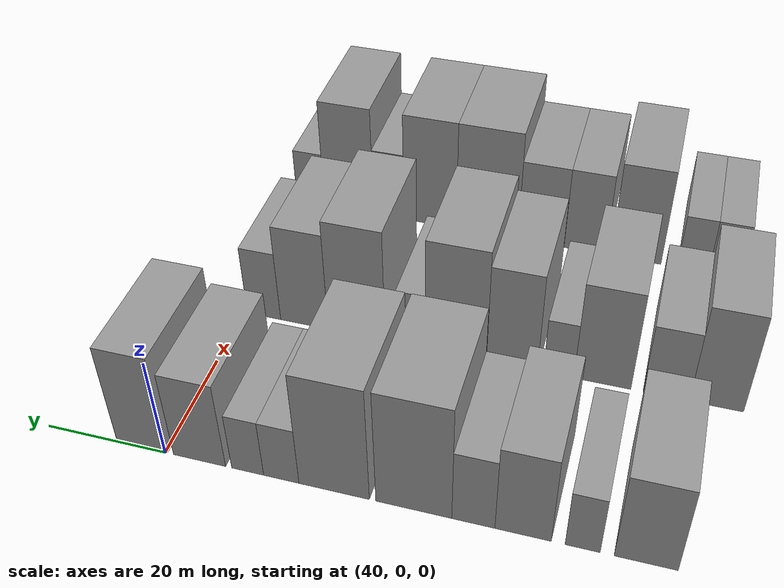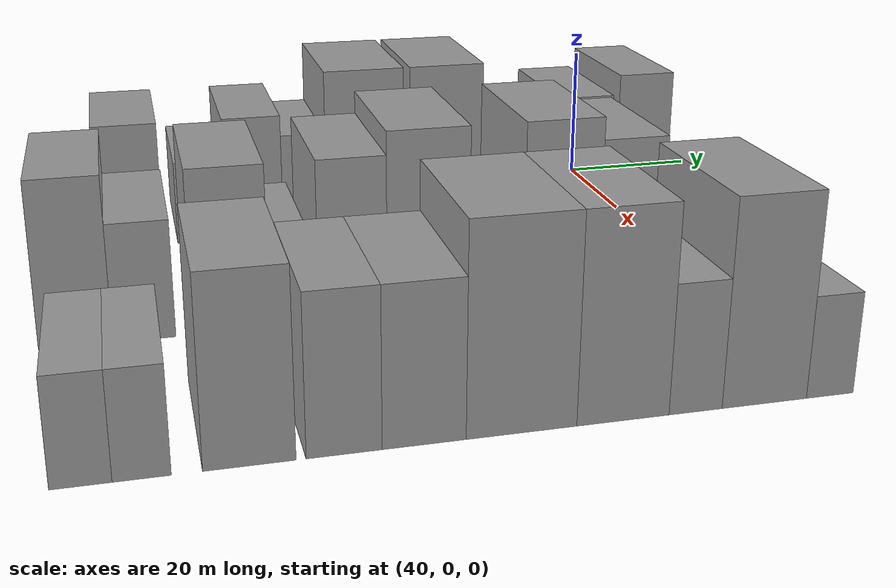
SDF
<sdf version="1.6">
 <world name="default">
  <model name="building_26">
   <static>1</static>
   <pose>50.0000 -73.7339 0 0.000000 0.000000 0.000000</pose>
   <link name="link">
    <pose>0 0 9.00 0 0 0</pose>
    <collision name="collision"><geometry><box><size>20.0000 8.9888 18.0000</size></box></geometry></collision>
    <visual name="visual">
     <cast_shadows>0</cast_shadows>
     <geometry><box><size>20.0000 8.9888 18.0000</size></box></geometry>
     <material>
      <script>
       <uri>model://grey_wall/materials/scripts</uri>
       <uri>model://grey_wall/materials/textures</uri>
       <name>vrc/grey_wall</name>
      </script>
     </material>
    </visual>
   </link>
  </model>
  <model name="building_27">
   <static>1</static>
   <pose>50.0000 -64.7259 0 0.000000 0.000000 0.000000</pose>
   <link name="link">
    <pose>0 0 6.00 0 0 0</pose>
    <collision name="collision"><geometry><box><size>20.0000 5.0272 12.0000</size></box></geometry></collision>
    <visual name="visual">
     <cast_shadows>0</cast_shadows>
     <geometry><box><size>20.0000 5.0272 12.0000</size></box></geometry>
     <material>
      <script>
       <uri>model://grey_wall/materials/scripts</uri>
       <uri>model://grey_wall/materials/textures</uri>
       <name>vrc/grey_wall</name>
      </script>
     </material>
    </visual>
   </link>
  </model>
  <model name="building_28">
   <static>1</static>
   <pose>50.0000 -56.0772 0 0.000000 0.000000 0.000000</pose>
   <link name="link">
    <pose>0 0 9.00 0 0 0</pose>
    <collision name="collision"><geometry><box><size>20.0000 8.2703 18.0000</size></box></geometry></collision>
    <visual name="visual">
     <cast_shadows>0</cast_shadows>
     <geometry><box><size>20.0000 8.2703 18.0000</size></box></geometry>
     <material>
      <script>
       <uri>model://grey_wall/materials/scripts</uri>
       <uri>model://grey_wall/materials/textures</uri>
       <name>vrc/grey_wall</name>
      </script>
     </material>
    </visual>
   </link>
  </model>
  <model name="building_29">
   <static>1</static>
   <pose>50.0000 -48.7248 0 0.000000 0.000000 0.000000</pose>
   <link name="link">
    <pose>0 0 7.50 0 0 0</pose>
    <collision name="collision"><geometry><box><size>20.0000 6.4346 15.0000</size></box></geometry></collision>
    <visual name="visual">
     <cast_shadows>0</cast_shadows>
     <geometry><box><size>20.0000 6.4346 15.0000</size></box></geometry>
     <material>
      <script>
       <uri>model://grey_wall/materials/scripts</uri>
       <uri>model://grey_wall/materials/textures</uri>
       <name>vrc/grey_wall</name>
      </script>
     </material>
    </visual>
   </link>
  </model>
  <model name="building_30">
   <static>1</static>
   <pose>50.0000 -39.7111 0 0.000000 0.000000 0.000000</pose>
   <link name="link">
    <pose>0 0 12.00 0 0 0</pose>
    <collision name="collision"><geometry><box><size>20.0000 11.5926 24.0000</size></box></geometry></collision>
    <visual name="visual">
     <cast_shadows>0</cast_shadows>
     <geometry><box><size>20.0000 11.5926 24.0000</size></box></geometry>
     <material>
      <script>
       <uri>model://grey_wall/materials/scripts</uri>
       <uri>model://grey_wall/materials/textures</uri>
       <name>vrc/grey_wall</name>
      </script>
     </material>
    </visual>
   </link>
  </model>
  <model name="building_31">
   <static>1</static>
   <pose>50.0000 -27.3773 0 0.000000 0.000000 0.000000</pose>
   <link name="link">
    <pose>0 0 12.00 0 0 0</pose>
    <collision name="collision"><geometry><box><size>20.0000 11.0751 24.0000</size></box></geometry></collision>
    <visual name="visual">
     <cast_shadows>0</cast_shadows>
     <geometry><box><size>20.0000 11.0751 24.0000</size></box></geometry>
     <material>
      <script>
       <uri>model://grey_wall/materials/scripts</uri>
       <uri>model://grey_wall/materials/textures</uri>
       <name>vrc/grey_wall</name>
      </script>
     </material>
    </visual>
   </link>
  </model>
  <model name="building_32">
   <static>1</static>
   <pose>50.0000 -19.0092 0 0.000000 0.000000 0.000000</pose>
   <link name="link">
    <pose>0 0 6.00 0 0 0</pose>
    <collision name="collision"><geometry><box><size>20.0000 5.6609 12.0000</size></box></geometry></collision>
    <visual name="visual">
     <cast_shadows>0</cast_shadows>
     <geometry><box><size>20.0000 5.6609 12.0000</size></box></geometry>
     <material>
      <script>
       <uri>model://grey_wall/materials/scripts</uri>
       <uri>model://grey_wall/materials/textures</uri>
       <name>vrc/grey_wall</name>
      </script>
     </material>
    </visual>
   </link>
  </model>
  <model name="building_33">
   <static>1</static>
   <pose>50.0000 -13.5868 0 0.000000 0.000000 0.000000</pose>
   <link name="link">
    <pose>0 0 6.00 0 0 0</pose>
    <collision name="collision"><geometry><box><size>20.0000 5.1841 12.0000</size></box></geometry></collision>
    <visual name="visual">
     <cast_shadows>0</cast_shadows>
     <geometry><box><size>20.0000 5.1841 12.0000</size></box></geometry>
     <material>
      <script>
       <uri>model://grey_wall/materials/scripts</uri>
       <uri>model://grey_wall/materials/textures</uri>
       <name>vrc/grey_wall</name>
      </script>
     </material>
    </visual>
   </link>
  </model>
  <model name="building_34">
   <static>1</static>
   <pose>50.0000 -5.6855 0 0.000000 0.000000 0.000000</pose>
   <link name="link">
    <pose>0 0 9.00 0 0 0</pose>
    <collision name="collision"><geometry><box><size>20.0000 8.6185 18.0000</size></box></geometry></collision>
    <visual name="visual">
     <cast_shadows>0</cast_shadows>
     <geometry><box><size>20.0000 8.6185 18.0000</size></box></geometry>
     <material>
      <script>
       <uri>model://grey_wall/materials/scripts</uri>
       <uri>model://grey_wall/materials/textures</uri>
       <name>vrc/grey_wall</name>
      </script>
     </material>
    </visual>
   </link>
  </model>
  <model name="building_35">
   <static>1</static>
   <pose>50.0000 3.8920 0 0.000000 0.000000 0.000000</pose>
   <link name="link">
    <pose>0 0 10.50 0 0 0</pose>
    <collision name="collision"><geometry><box><size>20.0000 8.5365 21.0000</size></box></geometry></collision>
    <visual name="visual">
     <cast_shadows>0</cast_shadows>
     <geometry><box><size>20.0000 8.5365 21.0000</size></box></geometry>
     <material>
      <script>
       <uri>model://grey_wall/materials/scripts</uri>
       <uri>model://grey_wall/materials/textures</uri>
       <name>vrc/grey_wall</name>
      </script>
     </material>
    </visual>
   </link>
  </model>
  <model name="building_107">
   <static>1</static>
   <pose>82.0000 -81.1191 0 0.000000 0.000000 0.000000</pose>
   <link name="link">
    <pose>0 0 10.50 0 0 0</pose>
    <collision name="collision"><geometry><box><size>20.0000 8.5541 21.0000</size></box></geometry></collision>
    <visual name="visual">
     <cast_shadows>0</cast_shadows>
     <geometry><box><size>20.0000 8.5541 21.0000</size></box></geometry>
     <material>
      <script>
       <uri>model://grey_wall/materials/scripts</uri>
       <uri>model://grey_wall/materials/textures</uri>
       <name>vrc/grey_wall</name>
      </script>
     </material>
    </visual>
   </link>
  </model>
  <model name="building_108">
   <static>1</static>
   <pose>82.0000 -73.1270 0 0.000000 0.000000 0.000000</pose>
   <link name="link">
    <pose>0 0 7.50 0 0 0</pose>
    <collision name="collision"><geometry><box><size>20.0000 7.4301 15.0000</size></box></geometry></collision>
    <visual name="visual">
     <cast_shadows>0</cast_shadows>
     <geometry><box><size>20.0000 7.4301 15.0000</size></box></geometry>
     <material>
      <script>
       <uri>model://grey_wall/materials/scripts</uri>
       <uri>model://grey_wall/materials/textures</uri>
       <name>vrc/grey_wall</name>
      </script>
     </material>
    </visual>
   </link>
  </model>
  <model name="building_109">
   <static>1</static>
   <pose>82.0000 -62.7336 0 0.000000 0.000000 0.000000</pose>
   <link name="link">
    <pose>0 0 10.50 0 0 0</pose>
    <collision name="collision"><geometry><box><size>20.0000 9.3566 21.0000</size></box></geometry></collision>
    <visual name="visual">
     <cast_shadows>0</cast_shadows>
     <geometry><box><size>20.0000 9.3566 21.0000</size></box></geometry>
     <material>
      <script>
       <uri>model://grey_wall/materials/scripts</uri>
       <uri>model://grey_wall/materials/textures</uri>
       <name>vrc/grey_wall</name>
      </script>
     </material>
    </visual>
   </link>
  </model>
  <model name="building_110">
   <static>1</static>
   <pose>82.0000 -55.5170 0 0.000000 0.000000 0.000000</pose>
   <link name="link">
    <pose>0 0 6.00 0 0 0</pose>
    <collision name="collision"><geometry><box><size>20.0000 5.0767 12.0000</size></box></geometry></collision>
    <visual name="visual">
     <cast_shadows>0</cast_shadows>
     <geometry><box><size>20.0000 5.0767 12.0000</size></box></geometry>
     <material>
      <script>
       <uri>model://grey_wall/materials/scripts</uri>
       <uri>model://grey_wall/materials/textures</uri>
       <name>vrc/grey_wall</name>
      </script>
     </material>
    </visual>
   </link>
  </model>
  <model name="building_111">
   <static>1</static>
   <pose>82.0000 -47.6541 0 0.000000 0.000000 0.000000</pose>
   <link name="link">
    <pose>0 0 10.50 0 0 0</pose>
    <collision name="collision"><geometry><box><size>20.0000 8.6492 21.0000</size></box></geometry></collision>
    <visual name="visual">
     <cast_shadows>0</cast_shadows>
     <geometry><box><size>20.0000 8.6492 21.0000</size></box></geometry>
     <material>
      <script>
       <uri>model://grey_wall/materials/scripts</uri>
       <uri>model://grey_wall/materials/textures</uri>
       <name>vrc/grey_wall</name>
      </script>
     </material>
    </visual>
   </link>
  </model>
  <model name="building_112">
   <static>1</static>
   <pose>82.0000 -38.0408 0 0.000000 0.000000 0.000000</pose>
   <link name="link">
    <pose>0 0 12.00 0 0 0</pose>
    <collision name="collision"><geometry><box><size>20.0000 10.5772 24.0000</size></box></geometry></collision>
    <visual name="visual">
     <cast_shadows>0</cast_shadows>
     <geometry><box><size>20.0000 10.5772 24.0000</size></box></geometry>
     <material>
      <script>
       <uri>model://grey_wall/materials/scripts</uri>
       <uri>model://grey_wall/materials/textures</uri>
       <name>vrc/grey_wall</name>
      </script>
     </material>
    </visual>
   </link>
  </model>
  <model name="building_113">
   <static>1</static>
   <pose>82.0000 -30.1926 0 0.000000 0.000000 0.000000</pose>
   <link name="link">
    <pose>0 0 6.00 0 0 0</pose>
    <collision name="collision"><geometry><box><size>20.0000 5.1192 12.0000</size></box></geometry></collision>
    <visual name="visual">
     <cast_shadows>0</cast_shadows>
     <geometry><box><size>20.0000 5.1192 12.0000</size></box></geometry>
     <material>
      <script>
       <uri>model://grey_wall/materials/scripts</uri>
       <uri>model://grey_wall/materials/textures</uri>
       <name>vrc/grey_wall</name>
      </script>
     </material>
    </visual>
   </link>
  </model>
  <model name="building_114">
   <static>1</static>
   <pose>82.0000 -20.5307 0 0.000000 0.000000 0.000000</pose>
   <link name="link">
    <pose>0 0 12.00 0 0 0</pose>
    <collision name="collision"><geometry><box><size>20.0000 10.2048 24.0000</size></box></geometry></collision>
    <visual name="visual">
     <cast_shadows>0</cast_shadows>
     <geometry><box><size>20.0000 10.2048 24.0000</size></box></geometry>
     <material>
      <script>
       <uri>model://grey_wall/materials/scripts</uri>
       <uri>model://grey_wall/materials/textures</uri>
       <name>vrc/grey_wall</name>
      </script>
     </material>
    </visual>
   </link>
  </model>
  <model name="building_115">
   <static>1</static>
   <pose>82.0000 -11.0730 0 0.000000 0.000000 0.000000</pose>
   <link name="link">
    <pose>0 0 10.50 0 0 0</pose>
    <collision name="collision"><geometry><box><size>20.0000 8.7106 21.0000</size></box></geometry></collision>
    <visual name="visual">
     <cast_shadows>0</cast_shadows>
     <geometry><box><size>20.0000 8.7106 21.0000</size></box></geometry>
     <material>
      <script>
       <uri>model://grey_wall/materials/scripts</uri>
       <uri>model://grey_wall/materials/textures</uri>
       <name>vrc/grey_wall</name>
      </script>
     </material>
    </visual>
   </link>
  </model>
  <model name="building_116">
   <static>1</static>
   <pose>82.0000 -3.6223 0 0.000000 0.000000 0.000000</pose>
   <link name="link">
    <pose>0 0 7.50 0 0 0</pose>
    <collision name="collision"><geometry><box><size>20.0000 6.1908 15.0000</size></box></geometry></collision>
    <visual name="visual">
     <cast_shadows>0</cast_shadows>
     <geometry><box><size>20.0000 6.1908 15.0000</size></box></geometry>
     <material>
      <script>
       <uri>model://grey_wall/materials/scripts</uri>
       <uri>model://grey_wall/materials/textures</uri>
       <name>vrc/grey_wall</name>
      </script>
     </material>
    </visual>
   </link>
  </model>
  <model name="building_185">
   <static>1</static>
   <pose>114.0000 -80.3225 0 0.000000 0.000000 0.000000</pose>
   <link name="link">
    <pose>0 0 6.00 0 0 0</pose>
    <collision name="collision"><geometry><box><size>20.0000 5.8989 12.0000</size></box></geometry></collision>
    <visual name="visual">
     <cast_shadows>0</cast_shadows>
     <geometry><box><size>20.0000 5.8989 12.0000</size></box></geometry>
     <material>
      <script>
       <uri>model://grey_wall/materials/scripts</uri>
       <uri>model://grey_wall/materials/textures</uri>
       <name>vrc/grey_wall</name>
      </script>
     </material>
    </visual>
   </link>
  </model>
  <model name="building_186">
   <static>1</static>
   <pose>114.0000 -74.5628 0 0.000000 0.000000 0.000000</pose>
   <link name="link">
    <pose>0 0 6.00 0 0 0</pose>
    <collision name="collision"><geometry><box><size>20.0000 5.6205 12.0000</size></box></geometry></collision>
    <visual name="visual">
     <cast_shadows>0</cast_shadows>
     <geometry><box><size>20.0000 5.6205 12.0000</size></box></geometry>
     <material>
      <script>
       <uri>model://grey_wall/materials/scripts</uri>
       <uri>model://grey_wall/materials/textures</uri>
       <name>vrc/grey_wall</name>
      </script>
     </material>
    </visual>
   </link>
  </model>
  <model name="building_187">
   <static>1</static>
   <pose>114.0000 -64.1477 0 0.000000 0.000000 0.000000</pose>
   <link name="link">
    <pose>0 0 10.50 0 0 0</pose>
    <collision name="collision"><geometry><box><size>20.0000 9.2096 21.0000</size></box></geometry></collision>
    <visual name="visual">
     <cast_shadows>0</cast_shadows>
     <geometry><box><size>20.0000 9.2096 21.0000</size></box></geometry>
     <material>
      <script>
       <uri>model://grey_wall/materials/scripts</uri>
       <uri>model://grey_wall/materials/textures</uri>
       <name>vrc/grey_wall</name>
      </script>
     </material>
    </visual>
   </link>
  </model>
  <model name="building_188">
   <static>1</static>
   <pose>114.0000 -54.6739 0 0.000000 0.000000 0.000000</pose>
   <link name="link">
    <pose>0 0 9.00 0 0 0</pose>
    <collision name="collision"><geometry><box><size>20.0000 7.7380 18.0000</size></box></geometry></collision>
    <visual name="visual">
     <cast_shadows>0</cast_shadows>
     <geometry><box><size>20.0000 7.7380 18.0000</size></box></geometry>
     <material>
      <script>
       <uri>model://grey_wall/materials/scripts</uri>
       <uri>model://grey_wall/materials/textures</uri>
       <name>vrc/grey_wall</name>
      </script>
     </material>
    </visual>
   </link>
  </model>
  <model name="building_189">
   <static>1</static>
   <pose>114.0000 -46.4164 0 0.000000 0.000000 0.000000</pose>
   <link name="link">
    <pose>0 0 9.00 0 0 0</pose>
    <collision name="collision"><geometry><box><size>20.0000 8.7769 18.0000</size></box></geometry></collision>
    <visual name="visual">
     <cast_shadows>0</cast_shadows>
     <geometry><box><size>20.0000 8.7769 18.0000</size></box></geometry>
     <material>
      <script>
       <uri>model://grey_wall/materials/scripts</uri>
       <uri>model://grey_wall/materials/textures</uri>
       <name>vrc/grey_wall</name>
      </script>
     </material>
    </visual>
   </link>
  </model>
  <model name="building_190">
   <static>1</static>
   <pose>114.0000 -36.0393 0 0.000000 0.000000 0.000000</pose>
   <link name="link">
    <pose>0 0 12.00 0 0 0</pose>
    <collision name="collision"><geometry><box><size>20.0000 11.9773 24.0000</size></box></geometry></collision>
    <visual name="visual">
     <cast_shadows>0</cast_shadows>
     <geometry><box><size>20.0000 11.9773 24.0000</size></box></geometry>
     <material>
      <script>
       <uri>model://grey_wall/materials/scripts</uri>
       <uri>model://grey_wall/materials/textures</uri>
       <name>vrc/grey_wall</name>
      </script>
     </material>
    </visual>
   </link>
  </model>
  <model name="building_191">
   <static>1</static>
   <pose>114.0000 -24.8741 0 0.000000 0.000000 0.000000</pose>
   <link name="link">
    <pose>0 0 12.00 0 0 0</pose>
    <collision name="collision"><geometry><box><size>20.0000 10.3530 24.0000</size></box></geometry></collision>
    <visual name="visual">
     <cast_shadows>0</cast_shadows>
     <geometry><box><size>20.0000 10.3530 24.0000</size></box></geometry>
     <material>
      <script>
       <uri>model://grey_wall/materials/scripts</uri>
       <uri>model://grey_wall/materials/textures</uri>
       <name>vrc/grey_wall</name>
      </script>
     </material>
    </visual>
   </link>
  </model>
  <model name="building_192">
   <static>1</static>
   <pose>114.0000 -16.6369 0 0.000000 0.000000 0.000000</pose>
   <link name="link">
    <pose>0 0 7.50 0 0 0</pose>
    <collision name="collision"><geometry><box><size>20.0000 6.1215 15.0000</size></box></geometry></collision>
    <visual name="visual">
     <cast_shadows>0</cast_shadows>
     <geometry><box><size>20.0000 6.1215 15.0000</size></box></geometry>
     <material>
      <script>
       <uri>model://grey_wall/materials/scripts</uri>
       <uri>model://grey_wall/materials/textures</uri>
       <name>vrc/grey_wall</name>
      </script>
     </material>
    </visual>
   </link>
  </model>
  <model name="building_193">
   <static>1</static>
   <pose>114.0000 -8.5868 0 0.000000 0.000000 0.000000</pose>
   <link name="link">
    <pose>0 0 12.00 0 0 0</pose>
    <collision name="collision"><geometry><box><size>20.0000 9.9788 24.0000</size></box></geometry></collision>
    <visual name="visual">
     <cast_shadows>0</cast_shadows>
     <geometry><box><size>20.0000 9.9788 24.0000</size></box></geometry>
     <material>
      <script>
       <uri>model://grey_wall/materials/scripts</uri>
       <uri>model://grey_wall/materials/textures</uri>
       <name>vrc/grey_wall</name>
      </script>
     </material>
    </visual>
   </link>
  </model>
  <model name="building_194">
   <static>1</static>
   <pose>114.0000 -0.7729 0 0.000000 0.000000 0.000000</pose>
   <link name="link">
    <pose>0 0 6.00 0 0 0</pose>
    <collision name="collision"><geometry><box><size>20.0000 5.6490 12.0000</size></box></geometry></collision>
    <visual name="visual">
     <cast_shadows>0</cast_shadows>
     <geometry><box><size>20.0000 5.6490 12.0000</size></box></geometry>
     <material>
      <script>
       <uri>model://grey_wall/materials/scripts</uri>
       <uri>model://grey_wall/materials/textures</uri>
       <name>vrc/grey_wall</name>
      </script>
     </material>
    </visual>
   </link>
  </model>
 </world>
</sdf>
